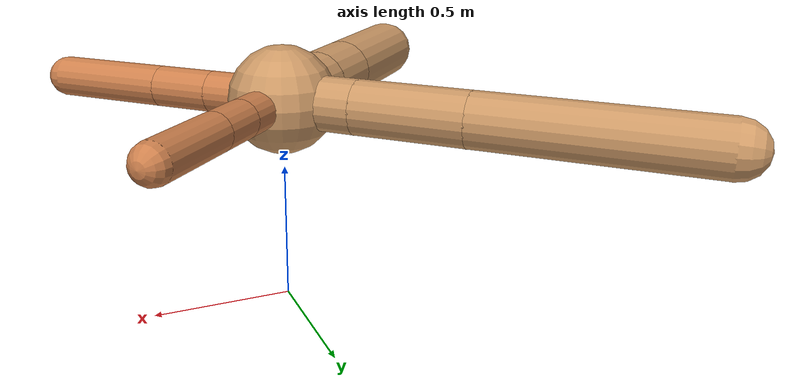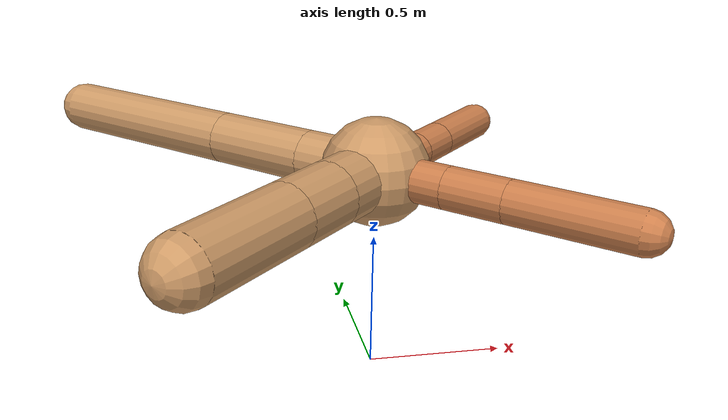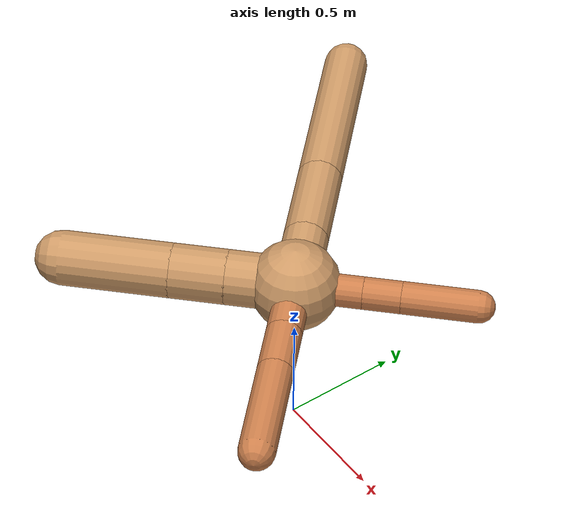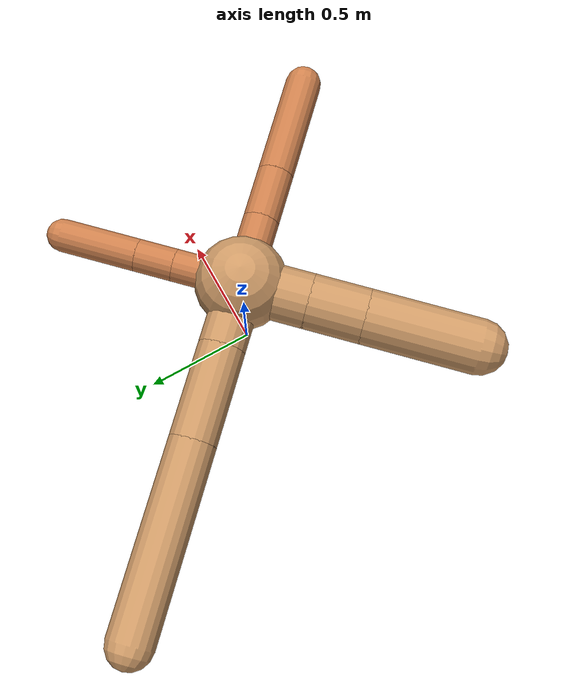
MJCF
<?xml version="1.0" ?>
<mujoco model="ant">

	<compiler angle="degree" coordinate="local" inertiafromgeom="true"/>

	<option integrator="RK4" timestep="0.01"/>

	<custom>

		<numeric data="0.0 0.0 0.55 1.0 0.0 0.0 0.0 0.0 1.0 0.0 -1.0 0.0 -1.0 0.0 1.0" name="init_qpos"/>

	</custom>

	<default>

		<joint armature="1" damping="1" limited="true"/>

		<geom conaffinity="0" condim="3" density="5.0" friction="1.5 0.1 0.1" margin="0.01" rgba="0.8 0.6 0.4 1"/>

	</default>

	<worldbody>

		<body name="torso" pos="0 0 0.75">

			<geom name="torso_geom" pos="0 0 0" size="0.1915567690680799" type="sphere"/>

			<!--joint armature="0" damping="0" limited="false" margin="0.01" name="root" pos="0 0 0" type="free"/-->

			<body name="front_left_leg" pos="0 0 0">

				<geom fromto="0 0 0 0.2 0.2 0" name="aux_1_geom" size="0.068020797800198" type="capsule" rgba=".8 .5 .3 1"/>

				<body name="aux_1" pos="0.2 0.2 0">

					<joint axis="0 0 1" name="hip_1" pos="0.0 0.0 0.0" range="-40 40" type="hinge"/>

					<geom fromto="0 0 0 0.11233427771134803 0.11233427771134803 0" name="left_leg_geom" size="0.068020797800198" type="capsule" rgba=".8 .5 .3 1"/>

					<body pos="0.11233427771134803 0.11233427771134803 0" name="front_left_foot">

						<joint axis="-1 1 0" name="ankle_1" pos="0.0 0.0 0.0" range="30 100" type="hinge"/>

						<geom fromto="0 0 0 0.22466855542269606 0.22466855542269606 0" name="left_ankle_geom" size="0.068020797800198" type="capsule" rgba=".8 .5 .3 1"/>

					</body>

				</body>

			</body>

			<body name="front_right_leg" pos="0 0 0">

				<geom fromto="0 0 0 -0.2 0.2 0" name="aux_2_geom" size="0.09644736897090309" type="capsule"/>

				<body name="aux_2" pos="-0.2 0.2 0">

					<joint axis="0 0 1" name="hip_2" pos="0.0 0.0 0.0" range="-40 40" type="hinge"/>

					<geom fromto="0 0 0 -0.27754180578498777 0.27754180578498777 0" name="right_leg_geom" size="0.09644736897090309" type="capsule"/>

					<body pos="-0.27754180578498777 0.27754180578498777 0" name="front_right_foot">

						<joint axis="1 1 0" name="ankle_2" pos="0.0 0.0 0.0" range="-100 -30" type="hinge"/>

						<geom fromto="0 0 0 -0.5550836115699755 0.5550836115699755 0" name="right_ankle_geom" size="0.09644736897090309" type="capsule"/>

					</body>

				</body>

			</body>

			<body name="left_back_leg" pos="0 0 0">

				<geom fromto="0 0 0 -0.2 -0.2 0" name="aux_3_geom" size="0.11561767082838927" type="capsule"/>

				<body name="aux_3" pos="-0.2 -0.2 0">

					<joint axis="0 0 1" name="hip_3" pos="0.0 0.0 0.0" range="-40 40" type="hinge"/>

					<geom fromto="0 0 0 -0.16468754572939007 -0.16468754572939007 0" name="back_leg_geom" size="0.11561767082838927" type="capsule"/>

					<body pos="-0.16468754572939007 -0.16468754572939007 0" name="left_back_foot">

						<joint axis="-1 1 0" name="ankle_3" pos="0.0 0.0 0.0" range="-100 -30" type="hinge"/>

						<geom fromto="0 0 0 -0.32937509145878013 -0.32937509145878013 0" name="third_ankle_geom" size="0.11561767082838927" type="capsule"/>

					</body>

				</body>

			</body>

			<body name="right_back_leg" pos="0 0 0">

				<geom fromto="0 0 0 0.2 -0.2 0" name="aux_4_geom" size="0.07519744534203392" type="capsule" rgba=".8 .5 .3 1"/>

				<body name="aux_4" pos="0.2 -0.2 0">

					<joint axis="0 0 1" name="hip_4" pos="0.0 0.0 0.0" range="-40 40" type="hinge"/>

					<geom fromto="0 0 0 0.15380368153554147 -0.15380368153554147 0" name="rightback_leg_geom" size="0.07519744534203392" type="capsule" rgba=".8 .5 .3 1"/>

					<body pos="0.15380368153554147 -0.15380368153554147 0" name="right_back_foot">

						<joint axis="1 1 0" name="ankle_4" pos="0.0 0.0 0.0" range="30 100" type="hinge"/>

						<geom fromto="0 0 0 0.30760736307108294 -0.30760736307108294 0" name="fourth_ankle_geom" size="0.07519744534203392" type="capsule" rgba=".8 .5 .3 1"/>

					</body>

				</body>

			</body>

		</body>

	</worldbody>

	<actuator>

		<motor ctrllimited="true" ctrlrange="-1.0 1.0" joint="hip_4" gear="150"/>

		<motor ctrllimited="true" ctrlrange="-1.0 1.0" joint="ankle_4" gear="150"/>

		<motor ctrllimited="true" ctrlrange="-1.0 1.0" joint="hip_1" gear="150"/>

		<motor ctrllimited="true" ctrlrange="-1.0 1.0" joint="ankle_1" gear="150"/>

		<motor ctrllimited="true" ctrlrange="-1.0 1.0" joint="hip_2" gear="150"/>

		<motor ctrllimited="true" ctrlrange="-1.0 1.0" joint="ankle_2" gear="150"/>

		<motor ctrllimited="true" ctrlrange="-1.0 1.0" joint="hip_3" gear="150"/>

		<motor ctrllimited="true" ctrlrange="-1.0 1.0" joint="ankle_3" gear="150"/>

	</actuator>

</mujoco>
